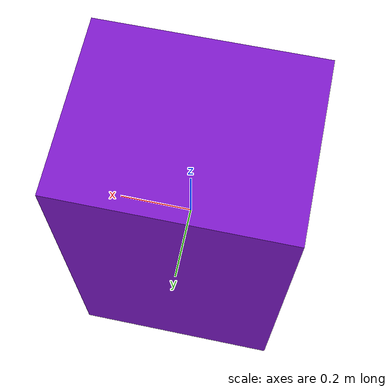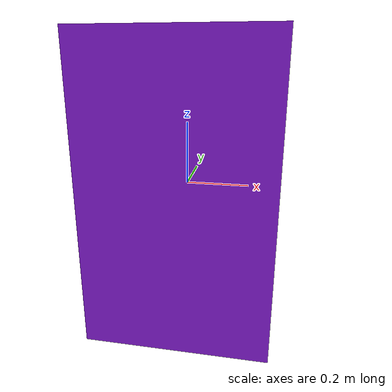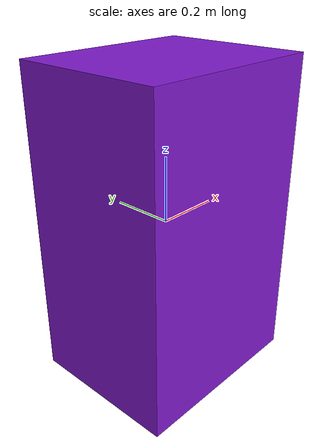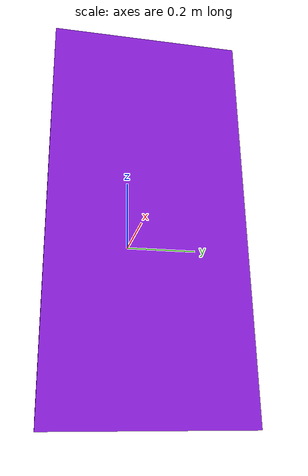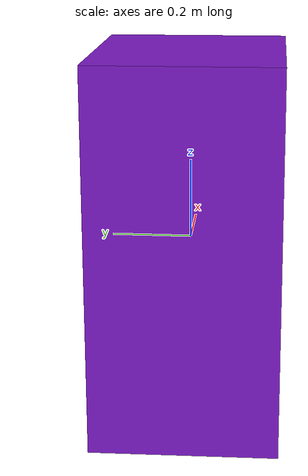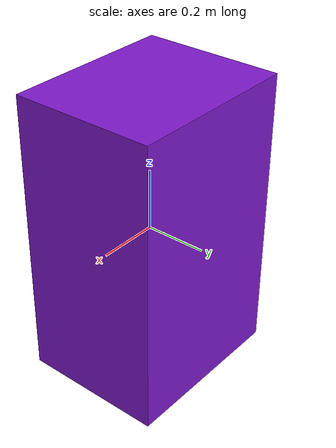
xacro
<?xml version="1.0"?>
<robot name="rolstoel">

 <link name="base_link">
  <visual>
   <geometry>
    <box size="0.58 0.47 0.96"/>
   </geometry>
   <material name="silver">
    <color rgba="0.5 0.1 0.8 5.0"/>
   </material>
  </visual>
  <collision>
   <geometry>
    <box size="0.58 0.47 0.96"/>
   </geometry>
  </collision>
  <inertial>
   <origin xyz="0.0 0 0" rpy=" 0 0 0"/>
   <mass value="1.0" />
   <inertia ixx="0.1" iyy="0.1" izz="0.1" ixy="0" ixz="0" iyz="0" />
  </inertial>
</link>

  <link name="laser">
   <collision>
    <origin xyz="0 0 0" rpy="0 0 0"/>
    <geometry>
     <box size="0.1 0.1 0.1"/>
    </geometry>
   </collision>
   <inertial>
    <mass value="1e-5" />
    <origin xyz="0 0 0" rpy="0 0 0"/>
    <inertia ixx="1e-6" ixy="0" ixz="0" iyy="1e-6" iyz="0" izz="1e-6" />
   </inertial>
  </link>

  <joint name="laser_joint" type="fixed">
    <axis xyz="0 1 0" />
    <origin xyz="0.31 0 0" rpy="0 0 0"/>
    <parent link="base_link"/>
    <child link="laser"/>
  </joint>

</robot>
